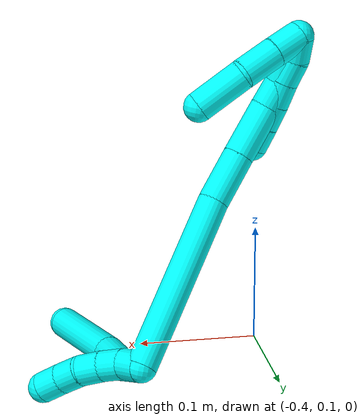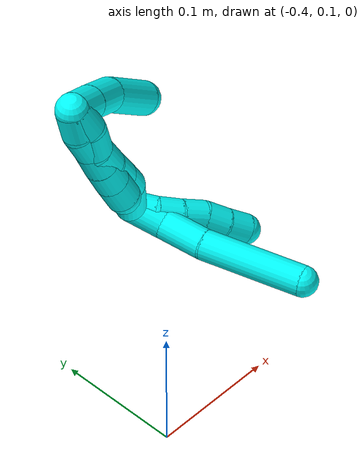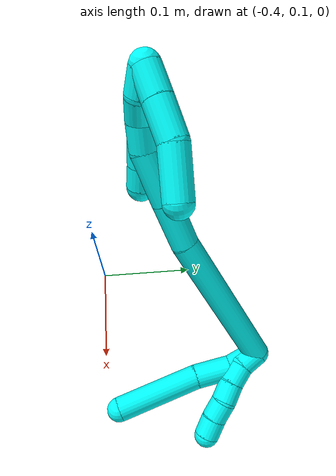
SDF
<sdf version="1.7">
 <world name="default">
  <model name="3">
   <static>0</static>
   <link name="3">
    <collision name="collision-cylinder-e_1_2_8">
     <pose>-0.011897 -0.007867 0.004262 1.07434 -0.925968 -0.577959</pose>
     <geometry><cylinder><radius>0.0125</radius><length>0.029771</length></cylinder></geometry>
     <surface>
      <friction><ode><mu>1.16</mu><mu2>1.16</mu2><slip1>0</slip1><slip2>0</slip2></ode></friction>
      <contact><ode><kp>1e+06</kp><kd>1</kd><max_vel>0</max_vel><min_depth>0.001</min_depth></ode></contact>
     </surface>
    </collision>
    <visual name="visual-cylinder-e_1_2_8">
     <pose>-0.011897 -0.007867 0.004262 1.07434 -0.925968 -0.577959</pose>
     <geometry><cylinder><radius>0.0125</radius><length>0.029771</length></cylinder></geometry>
     <material><ambient>0.003922 1 0.996078 1</ambient></material>
    </visual>
    <collision name="collision-cylinder-e_2_8_9">
     <pose>-0.037508 -0.028029 0.008988 1.53302 -0.83958 -0.811811</pose>
     <geometry><cylinder><radius>0.0125</radius><length>0.036852</length></cylinder></geometry>
     <surface>
      <friction><ode><mu>1.16</mu><mu2>1.16</mu2><slip1>0</slip1><slip2>0</slip2></ode></friction>
      <contact><ode><kp>1e+06</kp><kd>1</kd><max_vel>0</max_vel><min_depth>0.001</min_depth></ode></contact>
     </surface>
    </collision>
    <visual name="visual-cylinder-e_2_8_9">
     <pose>-0.037508 -0.028029 0.008988 1.53302 -0.83958 -0.811811</pose>
     <geometry><cylinder><radius>0.0125</radius><length>0.036852</length></cylinder></geometry>
     <material><ambient>0.003922 1 0.996078 1</ambient></material>
    </visual>
    <collision name="collision-cylinder-e_3_9_6">
     <pose>-0.085949 -0.063348 0.01087 1.50931 -0.984456 -0.934092</pose>
     <geometry><cylinder><radius>0.0125</radius><length>0.083377</length></cylinder></geometry>
     <surface>
      <friction><ode><mu>1.16</mu><mu2>1.16</mu2><slip1>0</slip1><slip2>0</slip2></ode></friction>
      <contact><ode><kp>1e+06</kp><kd>1</kd><max_vel>0</max_vel><min_depth>0.001</min_depth></ode></contact>
     </surface>
    </collision>
    <visual name="visual-cylinder-e_3_9_6">
     <pose>-0.085949 -0.063348 0.01087 1.50931 -0.984456 -0.934092</pose>
     <geometry><cylinder><radius>0.0125</radius><length>0.083377</length></cylinder></geometry>
     <material><ambient>0.003922 1 0.996078 1</ambient></material>
    </visual>
    <collision name="collision-cylinder-e_1_2_10">
     <pose>-0.00926 -0.003196 0.00201 1.0095 -1.18363 -0.711175</pose>
     <geometry><cylinder><radius>0.0125</radius><length>0.02</length></cylinder></geometry>
     <surface>
      <friction><ode><mu>1.16</mu><mu2>1.16</mu2><slip1>0</slip1><slip2>0</slip2></ode></friction>
      <contact><ode><kp>1e+06</kp><kd>1</kd><max_vel>0</max_vel><min_depth>0.001</min_depth></ode></contact>
     </surface>
    </collision>
    <visual name="visual-cylinder-e_1_2_10">
     <pose>-0.00926 -0.003196 0.00201 1.0095 -1.18363 -0.711175</pose>
     <geometry><cylinder><radius>0.0125</radius><length>0.02</length></cylinder></geometry>
     <material><ambient>0.003922 1 0.996078 1</ambient></material>
    </visual>
    <collision name="collision-cylinder-e_2_10_11">
     <pose>-0.027748 -0.006741 0.007857 0.090599 -1.17527 -0.060374</pose>
     <geometry><cylinder><radius>0.0125</radius><length>0.02</length></cylinder></geometry>
     <surface>
      <friction><ode><mu>1.16</mu><mu2>1.16</mu2><slip1>0</slip1><slip2>0</slip2></ode></friction>
      <contact><ode><kp>1e+06</kp><kd>1</kd><max_vel>0</max_vel><min_depth>0.001</min_depth></ode></contact>
     </surface>
    </collision>
    <visual name="visual-cylinder-e_2_10_11">
     <pose>-0.027748 -0.006741 0.007857 0.090599 -1.17527 -0.060374</pose>
     <geometry><cylinder><radius>0.0125</radius><length>0.02</length></cylinder></geometry>
     <material><ambient>0.003922 1 0.996078 1</ambient></material>
    </visual>
    <collision name="collision-cylinder-e_3_11_12">
     <pose>-0.045869 -0.006212 0.016181 -0.193182 -1.09588 0.118124</pose>
     <geometry><cylinder><radius>0.0125</radius><length>0.02</length></cylinder></geometry>
     <surface>
      <friction><ode><mu>1.16</mu><mu2>1.16</mu2><slip1>0</slip1><slip2>0</slip2></ode></friction>
      <contact><ode><kp>1e+06</kp><kd>1</kd><max_vel>0</max_vel><min_depth>0.001</min_depth></ode></contact>
     </surface>
    </collision>
    <visual name="visual-cylinder-e_3_11_12">
     <pose>-0.045869 -0.006212 0.016181 -0.193182 -1.09588 0.118124</pose>
     <geometry><cylinder><radius>0.0125</radius><length>0.02</length></cylinder></geometry>
     <material><ambient>0.003922 1 0.996078 1</ambient></material>
    </visual>
    <collision name="collision-cylinder-e_4_12_13">
     <pose>-0.06278 -0.006283 0.026569 0.159512 -0.930322 -0.080185</pose>
     <geometry><cylinder><radius>0.0125</radius><length>0.02</length></cylinder></geometry>
     <surface>
      <friction><ode><mu>1.16</mu><mu2>1.16</mu2><slip1>0</slip1><slip2>0</slip2></ode></friction>
      <contact><ode><kp>1e+06</kp><kd>1</kd><max_vel>0</max_vel><min_depth>0.001</min_depth></ode></contact>
     </surface>
    </collision>
    <visual name="visual-cylinder-e_4_12_13">
     <pose>-0.06278 -0.006283 0.026569 0.159512 -0.930322 -0.080185</pose>
     <geometry><cylinder><radius>0.0125</radius><length>0.02</length></cylinder></geometry>
     <material><ambient>0.003922 1 0.996078 1</ambient></material>
    </visual>
    <collision name="collision-cylinder-e_5_13_5">
     <pose>-0.078629 -0.007165 0.038687 -0.01078 -0.899636 0.005205</pose>
     <geometry><cylinder><radius>0.0125</radius><length>0.02</length></cylinder></geometry>
     <surface>
      <friction><ode><mu>1.16</mu><mu2>1.16</mu2><slip1>0</slip1><slip2>0</slip2></ode></friction>
      <contact><ode><kp>1e+06</kp><kd>1</kd><max_vel>0</max_vel><min_depth>0.001</min_depth></ode></contact>
     </surface>
    </collision>
    <visual name="visual-cylinder-e_5_13_5">
     <pose>-0.078629 -0.007165 0.038687 -0.01078 -0.899636 0.005205</pose>
     <geometry><cylinder><radius>0.0125</radius><length>0.02</length></cylinder></geometry>
     <material><ambient>0.003922 1 0.996078 1</ambient></material>
    </visual>
    <collision name="collision-cylinder-e_1_2_14">
     <pose>-0.000292 -0.036433 -0.063473 2.62051 -0.003983 -0.01494</pose>
     <geometry><cylinder><radius>0.0125</radius><length>0.146374</length></cylinder></geometry>
     <surface>
      <friction><ode><mu>1.16</mu><mu2>1.16</mu2><slip1>0</slip1><slip2>0</slip2></ode></friction>
      <contact><ode><kp>1e+06</kp><kd>1</kd><max_vel>0</max_vel><min_depth>0.001</min_depth></ode></contact>
     </surface>
    </collision>
    <visual name="visual-cylinder-e_1_2_14">
     <pose>-0.000292 -0.036433 -0.063473 2.62051 -0.003983 -0.01494</pose>
     <geometry><cylinder><radius>0.0125</radius><length>0.146374</length></cylinder></geometry>
     <material><ambient>0.003922 1 0.996078 1</ambient></material>
    </visual>
    <collision name="collision-cylinder-e_2_14_15">
     <pose>0.00214 -0.082091 -0.145881 2.68828 0.128561 0.544379</pose>
     <geometry><cylinder><radius>0.0125</radius><length>0.042474</length></cylinder></geometry>
     <surface>
      <friction><ode><mu>1.16</mu><mu2>1.16</mu2><slip1>0</slip1><slip2>0</slip2></ode></friction>
      <contact><ode><kp>1e+06</kp><kd>1</kd><max_vel>0</max_vel><min_depth>0.001</min_depth></ode></contact>
     </surface>
    </collision>
    <visual name="visual-cylinder-e_2_14_15">
     <pose>0.00214 -0.082091 -0.145881 2.68828 0.128561 0.544379</pose>
     <geometry><cylinder><radius>0.0125</radius><length>0.042474</length></cylinder></geometry>
     <material><ambient>0.003922 1 0.996078 1</ambient></material>
    </visual>
    <collision name="collision-cylinder-e_3_15_16">
     <pose>0.008109 -0.101092 -0.185123 2.69287 0.143068 0.608507</pose>
     <geometry><cylinder><radius>0.0125</radius><length>0.045543</length></cylinder></geometry>
     <surface>
      <friction><ode><mu>1.16</mu><mu2>1.16</mu2><slip1>0</slip1><slip2>0</slip2></ode></friction>
      <contact><ode><kp>1e+06</kp><kd>1</kd><max_vel>0</max_vel><min_depth>0.001</min_depth></ode></contact>
     </surface>
    </collision>
    <visual name="visual-cylinder-e_3_15_16">
     <pose>0.008109 -0.101092 -0.185123 2.69287 0.143068 0.608507</pose>
     <geometry><cylinder><radius>0.0125</radius><length>0.045543</length></cylinder></geometry>
     <material><ambient>0.003922 1 0.996078 1</ambient></material>
    </visual>
    <collision name="collision-cylinder-e_4_16_17">
     <pose>0.01472 -0.112793 -0.216598 2.97104 0.288593 2.07802</pose>
     <geometry><cylinder><radius>0.0125</radius><length>0.023642</length></cylinder></geometry>
     <surface>
      <friction><ode><mu>1.16</mu><mu2>1.16</mu2><slip1>0</slip1><slip2>0</slip2></ode></friction>
      <contact><ode><kp>1e+06</kp><kd>1</kd><max_vel>0</max_vel><min_depth>0.001</min_depth></ode></contact>
     </surface>
    </collision>
    <visual name="visual-cylinder-e_4_16_17">
     <pose>0.01472 -0.112793 -0.216598 2.97104 0.288593 2.07802</pose>
     <geometry><cylinder><radius>0.0125</radius><length>0.023642</length></cylinder></geometry>
     <material><ambient>0.003922 1 0.996078 1</ambient></material>
    </visual>
    <collision name="collision-cylinder-e_5_17_18">
     <pose>0.019087 -0.113641 -0.23784 -3.03521 0.098586 -1.49466</pose>
     <geometry><cylinder><radius>0.0125</radius><length>0.020363</length></cylinder></geometry>
     <surface>
      <friction><ode><mu>1.16</mu><mu2>1.16</mu2><slip1>0</slip1><slip2>0</slip2></ode></friction>
      <contact><ode><kp>1e+06</kp><kd>1</kd><max_vel>0</max_vel><min_depth>0.001</min_depth></ode></contact>
     </surface>
    </collision>
    <visual name="visual-cylinder-e_5_17_18">
     <pose>0.019087 -0.113641 -0.23784 -3.03521 0.098586 -1.49466</pose>
     <geometry><cylinder><radius>0.0125</radius><length>0.020363</length></cylinder></geometry>
     <material><ambient>0.003922 1 0.996078 1</ambient></material>
    </visual>
    <collision name="collision-cylinder-e_6_18_1">
     <pose>0.024099 -0.111194 -0.257852 -3.00448 0.380302 -2.45628</pose>
     <geometry><cylinder><radius>0.0125</radius><length>0.021605</length></cylinder></geometry>
     <surface>
      <friction><ode><mu>1.16</mu><mu2>1.16</mu2><slip1>0</slip1><slip2>0</slip2></ode></friction>
      <contact><ode><kp>1e+06</kp><kd>1</kd><max_vel>0</max_vel><min_depth>0.001</min_depth></ode></contact>
     </surface>
    </collision>
    <visual name="visual-cylinder-e_6_18_1">
     <pose>0.024099 -0.111194 -0.257852 -3.00448 0.380302 -2.45628</pose>
     <geometry><cylinder><radius>0.0125</radius><length>0.021605</length></cylinder></geometry>
     <material><ambient>0.003922 1 0.996078 1</ambient></material>
    </visual>
    <collision name="collision-cylinder-e_1_1_19">
     <pose>0.022665 -0.10156 -0.26013 -0.823407 -0.450114 0.199271</pose>
     <geometry><cylinder><radius>0.0125</radius><length>0.025024</length></cylinder></geometry>
     <surface>
      <friction><ode><mu>1.16</mu><mu2>1.16</mu2><slip1>0</slip1><slip2>0</slip2></ode></friction>
      <contact><ode><kp>1e+06</kp><kd>1</kd><max_vel>0</max_vel><min_depth>0.001</min_depth></ode></contact>
     </surface>
    </collision>
    <visual name="visual-cylinder-e_1_1_19">
     <pose>0.022665 -0.10156 -0.26013 -0.823407 -0.450114 0.199271</pose>
     <geometry><cylinder><radius>0.0125</radius><length>0.025024</length></cylinder></geometry>
     <material><ambient>0.003922 1 0.996078 1</ambient></material>
    </visual>
    <collision name="collision-cylinder-e_2_19_20">
     <pose>0.010327 -0.082926 -0.242262 -0.793189 -0.442372 0.187786</pose>
     <geometry><cylinder><radius>0.0125</radius><length>0.032207</length></cylinder></geometry>
     <surface>
      <friction><ode><mu>1.16</mu><mu2>1.16</mu2><slip1>0</slip1><slip2>0</slip2></ode></friction>
      <contact><ode><kp>1e+06</kp><kd>1</kd><max_vel>0</max_vel><min_depth>0.001</min_depth></ode></contact>
     </surface>
    </collision>
    <visual name="visual-cylinder-e_2_19_20">
     <pose>0.010327 -0.082926 -0.242262 -0.793189 -0.442372 0.187786</pose>
     <geometry><cylinder><radius>0.0125</radius><length>0.032207</length></cylinder></geometry>
     <material><ambient>0.003922 1 0.996078 1</ambient></material>
    </visual>
    <collision name="collision-cylinder-e_3_20_4">
     <pose>-0.008531 -0.064064 -0.216495 -0.499626 -0.593795 0.155801</pose>
     <geometry><cylinder><radius>0.0125</radius><length>0.042768</length></cylinder></geometry>
     <surface>
      <friction><ode><mu>1.16</mu><mu2>1.16</mu2><slip1>0</slip1><slip2>0</slip2></ode></friction>
      <contact><ode><kp>1e+06</kp><kd>1</kd><max_vel>0</max_vel><min_depth>0.001</min_depth></ode></contact>
     </surface>
    </collision>
    <visual name="visual-cylinder-e_3_20_4">
     <pose>-0.008531 -0.064064 -0.216495 -0.499626 -0.593795 0.155801</pose>
     <geometry><cylinder><radius>0.0125</radius><length>0.042768</length></cylinder></geometry>
     <material><ambient>0.003922 1 0.996078 1</ambient></material>
    </visual>
    <collision name="collision-cylinder-e_1_1_21">
     <pose>0.027207 -0.11198 -0.258065 0.218291 -0.090288 -0.009901</pose>
     <geometry><cylinder><radius>0.0125</radius><length>0.02</length></cylinder></geometry>
     <surface>
      <friction><ode><mu>1.16</mu><mu2>1.16</mu2><slip1>0</slip1><slip2>0</slip2></ode></friction>
      <contact><ode><kp>1e+06</kp><kd>1</kd><max_vel>0</max_vel><min_depth>0.001</min_depth></ode></contact>
     </surface>
    </collision>
    <visual name="visual-cylinder-e_1_1_21">
     <pose>0.027207 -0.11198 -0.258065 0.218291 -0.090288 -0.009901</pose>
     <geometry><cylinder><radius>0.0125</radius><length>0.02</length></cylinder></geometry>
     <material><ambient>0.003922 1 0.996078 1</ambient></material>
    </visual>
    <collision name="collision-cylinder-e_2_21_22">
     <pose>0.02335 -0.114262 -0.23879 0.013135 -0.29995 -0.001985</pose>
     <geometry><cylinder><radius>0.0125</radius><length>0.02</length></cylinder></geometry>
     <surface>
      <friction><ode><mu>1.16</mu><mu2>1.16</mu2><slip1>0</slip1><slip2>0</slip2></ode></friction>
      <contact><ode><kp>1e+06</kp><kd>1</kd><max_vel>0</max_vel><min_depth>0.001</min_depth></ode></contact>
     </surface>
    </collision>
    <visual name="visual-cylinder-e_2_21_22">
     <pose>0.02335 -0.114262 -0.23879 0.013135 -0.29995 -0.001985</pose>
     <geometry><cylinder><radius>0.0125</radius><length>0.02</length></cylinder></geometry>
     <material><ambient>0.003922 1 0.996078 1</ambient></material>
    </visual>
    <collision name="collision-cylinder-e_3_22_23">
     <pose>0.018031 -0.114778 -0.219528 0.040187 -0.238736 -0.004821</pose>
     <geometry><cylinder><radius>0.0125</radius><length>0.02</length></cylinder></geometry>
     <surface>
      <friction><ode><mu>1.16</mu><mu2>1.16</mu2><slip1>0</slip1><slip2>0</slip2></ode></friction>
      <contact><ode><kp>1e+06</kp><kd>1</kd><max_vel>0</max_vel><min_depth>0.001</min_depth></ode></contact>
     </surface>
    </collision>
    <visual name="visual-cylinder-e_3_22_23">
     <pose>0.018031 -0.114778 -0.219528 0.040187 -0.238736 -0.004821</pose>
     <geometry><cylinder><radius>0.0125</radius><length>0.02</length></cylinder></geometry>
     <material><ambient>0.003922 1 0.996078 1</ambient></material>
    </visual>
    <collision name="collision-cylinder-e_4_23_24">
     <pose>0.012963 -0.1152 -0.200192 0.003323 -0.273728 -0.000458</pose>
     <geometry><cylinder><radius>0.0125</radius><length>0.02</length></cylinder></geometry>
     <surface>
      <friction><ode><mu>1.16</mu><mu2>1.16</mu2><slip1>0</slip1><slip2>0</slip2></ode></friction>
      <contact><ode><kp>1e+06</kp><kd>1</kd><max_vel>0</max_vel><min_depth>0.001</min_depth></ode></contact>
     </surface>
    </collision>
    <visual name="visual-cylinder-e_4_23_24">
     <pose>0.012963 -0.1152 -0.200192 0.003323 -0.273728 -0.000458</pose>
     <geometry><cylinder><radius>0.0125</radius><length>0.02</length></cylinder></geometry>
     <material><ambient>0.003922 1 0.996078 1</ambient></material>
    </visual>
    <collision name="collision-cylinder-e_5_24_3">
     <pose>0.007159 -0.115473 -0.181061 0.025374 -0.315309 -0.004034</pose>
     <geometry><cylinder><radius>0.0125</radius><length>0.02</length></cylinder></geometry>
     <surface>
      <friction><ode><mu>1.16</mu><mu2>1.16</mu2><slip1>0</slip1><slip2>0</slip2></ode></friction>
      <contact><ode><kp>1e+06</kp><kd>1</kd><max_vel>0</max_vel><min_depth>0.001</min_depth></ode></contact>
     </surface>
    </collision>
    <visual name="visual-cylinder-e_5_24_3">
     <pose>0.007159 -0.115473 -0.181061 0.025374 -0.315309 -0.004034</pose>
     <geometry><cylinder><radius>0.0125</radius><length>0.02</length></cylinder></geometry>
     <material><ambient>0.003922 1 0.996078 1</ambient></material>
    </visual>
    <collision name="collision-sphere-3">
     <pose>0.004058 -0.115715 -0.171557 0 -0 0</pose>
     <geometry><sphere><radius>0.0125</radius></sphere></geometry>
     <surface>
      <friction><ode><mu>1.16</mu><mu2>1.16</mu2><slip1>0</slip1><slip2>0</slip2></ode></friction>
      <contact><ode><kp>1e+06</kp><kd>1</kd><max_vel>0</max_vel><min_depth>0.001</min_depth></ode></contact>
     </surface>
    </collision>
    <visual name="visual-sphere-3">
     <pose>0.004058 -0.115715 -0.171557 0 -0 0</pose>
     <geometry><sphere><radius>0.0125</radius></sphere></geometry>
     <material><ambient>0.003922 1 0.996078 1</ambient></material>
    </visual>
    <collision name="collision-sphere-24">
     <pose>0.01026 -0.115232 -0.190564 0 -0 0</pose>
     <geometry><sphere><radius>0.0125</radius></sphere></geometry>
     <surface>
      <friction><ode><mu>1.16</mu><mu2>1.16</mu2><slip1>0</slip1><slip2>0</slip2></ode></friction>
      <contact><ode><kp>1e+06</kp><kd>1</kd><max_vel>0</max_vel><min_depth>0.001</min_depth></ode></contact>
     </surface>
    </collision>
    <visual name="visual-sphere-24">
     <pose>0.01026 -0.115232 -0.190564 0 -0 0</pose>
     <geometry><sphere><radius>0.0125</radius></sphere></geometry>
     <material><ambient>0.003922 1 0.996078 1</ambient></material>
    </visual>
    <collision name="collision-sphere-23">
     <pose>0.015666 -0.115168 -0.20982 0 -0 0</pose>
     <geometry><sphere><radius>0.0125</radius></sphere></geometry>
     <surface>
      <friction><ode><mu>1.16</mu><mu2>1.16</mu2><slip1>0</slip1><slip2>0</slip2></ode></friction>
      <contact><ode><kp>1e+06</kp><kd>1</kd><max_vel>0</max_vel><min_depth>0.001</min_depth></ode></contact>
     </surface>
    </collision>
    <visual name="visual-sphere-23">
     <pose>0.015666 -0.115168 -0.20982 0 -0 0</pose>
     <geometry><sphere><radius>0.0125</radius></sphere></geometry>
     <material><ambient>0.003922 1 0.996078 1</ambient></material>
    </visual>
    <collision name="collision-sphere-22">
     <pose>0.020396 -0.114387 -0.229237 0 -0 0</pose>
     <geometry><sphere><radius>0.0125</radius></sphere></geometry>
     <surface>
      <friction><ode><mu>1.16</mu><mu2>1.16</mu2><slip1>0</slip1><slip2>0</slip2></ode></friction>
      <contact><ode><kp>1e+06</kp><kd>1</kd><max_vel>0</max_vel><min_depth>0.001</min_depth></ode></contact>
     </surface>
    </collision>
    <visual name="visual-sphere-22">
     <pose>0.020396 -0.114387 -0.229237 0 -0 0</pose>
     <geometry><sphere><radius>0.0125</radius></sphere></geometry>
     <material><ambient>0.003922 1 0.996078 1</ambient></material>
    </visual>
    <collision name="collision-sphere-21">
     <pose>0.026305 -0.114136 -0.248342 0 -0 0</pose>
     <geometry><sphere><radius>0.0125</radius></sphere></geometry>
     <surface>
      <friction><ode><mu>1.16</mu><mu2>1.16</mu2><slip1>0</slip1><slip2>0</slip2></ode></friction>
      <contact><ode><kp>1e+06</kp><kd>1</kd><max_vel>0</max_vel><min_depth>0.001</min_depth></ode></contact>
     </surface>
    </collision>
    <visual name="visual-sphere-21">
     <pose>0.026305 -0.114136 -0.248342 0 -0 0</pose>
     <geometry><sphere><radius>0.0125</radius></sphere></geometry>
     <material><ambient>0.003922 1 0.996078 1</ambient></material>
    </visual>
    <collision name="collision-sphere-4">
     <pose>-0.020496 -0.055572 -0.200937 0 -0 0</pose>
     <geometry><sphere><radius>0.0125</radius></sphere></geometry>
     <surface>
      <friction><ode><mu>1.16</mu><mu2>1.16</mu2><slip1>0</slip1><slip2>0</slip2></ode></friction>
      <contact><ode><kp>1e+06</kp><kd>1</kd><max_vel>0</max_vel><min_depth>0.001</min_depth></ode></contact>
     </surface>
    </collision>
    <visual name="visual-sphere-4">
     <pose>-0.020496 -0.055572 -0.200937 0 -0 0</pose>
     <geometry><sphere><radius>0.0125</radius></sphere></geometry>
     <material><ambient>0.003922 1 0.996078 1</ambient></material>
    </visual>
    <collision name="collision-sphere-20">
     <pose>0.003434 -0.072555 -0.232052 0 -0 0</pose>
     <geometry><sphere><radius>0.0125</radius></sphere></geometry>
     <surface>
      <friction><ode><mu>1.16</mu><mu2>1.16</mu2><slip1>0</slip1><slip2>0</slip2></ode></friction>
      <contact><ode><kp>1e+06</kp><kd>1</kd><max_vel>0</max_vel><min_depth>0.001</min_depth></ode></contact>
     </surface>
    </collision>
    <visual name="visual-sphere-20">
     <pose>0.003434 -0.072555 -0.232052 0 -0 0</pose>
     <geometry><sphere><radius>0.0125</radius></sphere></geometry>
     <material><ambient>0.003922 1 0.996078 1</ambient></material>
    </visual>
    <collision name="collision-sphere-11">
     <pose>-0.036976 -0.00709 0.011694 0 -0 0</pose>
     <geometry><sphere><radius>0.0125</radius></sphere></geometry>
     <surface>
      <friction><ode><mu>1.16</mu><mu2>1.16</mu2><slip1>0</slip1><slip2>0</slip2></ode></friction>
      <contact><ode><kp>1e+06</kp><kd>1</kd><max_vel>0</max_vel><min_depth>0.001</min_depth></ode></contact>
     </surface>
    </collision>
    <visual name="visual-sphere-11">
     <pose>-0.036976 -0.00709 0.011694 0 -0 0</pose>
     <geometry><sphere><radius>0.0125</radius></sphere></geometry>
     <material><ambient>0.003922 1 0.996078 1</ambient></material>
    </visual>
    <collision name="collision-sphere-10">
     <pose>-0.01852 -0.006393 0.004019 0 -0 0</pose>
     <geometry><sphere><radius>0.0125</radius></sphere></geometry>
     <surface>
      <friction><ode><mu>1.16</mu><mu2>1.16</mu2><slip1>0</slip1><slip2>0</slip2></ode></friction>
      <contact><ode><kp>1e+06</kp><kd>1</kd><max_vel>0</max_vel><min_depth>0.001</min_depth></ode></contact>
     </surface>
    </collision>
    <visual name="visual-sphere-10">
     <pose>-0.01852 -0.006393 0.004019 0 -0 0</pose>
     <geometry><sphere><radius>0.0125</radius></sphere></geometry>
     <material><ambient>0.003922 1 0.996078 1</ambient></material>
    </visual>
    <collision name="collision-sphere-6">
     <pose>-0.120675 -0.086372 0.012287 0 -0 0</pose>
     <geometry><sphere><radius>0.0125</radius></sphere></geometry>
     <surface>
      <friction><ode><mu>1.16</mu><mu2>1.16</mu2><slip1>0</slip1><slip2>0</slip2></ode></friction>
      <contact><ode><kp>1e+06</kp><kd>1</kd><max_vel>0</max_vel><min_depth>0.001</min_depth></ode></contact>
     </surface>
    </collision>
    <visual name="visual-sphere-6">
     <pose>-0.120675 -0.086372 0.012287 0 -0 0</pose>
     <geometry><sphere><radius>0.0125</radius></sphere></geometry>
     <material><ambient>0.003922 1 0.996078 1</ambient></material>
    </visual>
    <collision name="collision-sphere-9">
     <pose>-0.051224 -0.040325 0.009452 0 -0 0</pose>
     <geometry><sphere><radius>0.0125</radius></sphere></geometry>
     <surface>
      <friction><ode><mu>1.16</mu><mu2>1.16</mu2><slip1>0</slip1><slip2>0</slip2></ode></friction>
      <contact><ode><kp>1e+06</kp><kd>1</kd><max_vel>0</max_vel><min_depth>0.001</min_depth></ode></contact>
     </surface>
    </collision>
    <visual name="visual-sphere-9">
     <pose>-0.051224 -0.040325 0.009452 0 -0 0</pose>
     <geometry><sphere><radius>0.0125</radius></sphere></geometry>
     <material><ambient>0.003922 1 0.996078 1</ambient></material>
    </visual>
    <collision name="collision-sphere-2">
     <geometry><sphere><radius>0.0125</radius></sphere></geometry>
     <surface>
      <friction><ode><mu>1.16</mu><mu2>1.16</mu2><slip1>0</slip1><slip2>0</slip2></ode></friction>
      <contact><ode><kp>1e+06</kp><kd>1</kd><max_vel>0</max_vel><min_depth>0.001</min_depth></ode></contact>
     </surface>
    </collision>
    <visual name="visual-sphere-2">
     <geometry><sphere><radius>0.0125</radius></sphere></geometry>
     <material><ambient>0.003922 1 0.996078 1</ambient></material>
    </visual>
    <collision name="collision-sphere-19">
     <pose>0.017221 -0.093296 -0.252473 0 -0 0</pose>
     <geometry><sphere><radius>0.0125</radius></sphere></geometry>
     <surface>
      <friction><ode><mu>1.16</mu><mu2>1.16</mu2><slip1>0</slip1><slip2>0</slip2></ode></friction>
      <contact><ode><kp>1e+06</kp><kd>1</kd><max_vel>0</max_vel><min_depth>0.001</min_depth></ode></contact>
     </surface>
    </collision>
    <visual name="visual-sphere-19">
     <pose>0.017221 -0.093296 -0.252473 0 -0 0</pose>
     <geometry><sphere><radius>0.0125</radius></sphere></geometry>
     <material><ambient>0.003922 1 0.996078 1</ambient></material>
    </visual>
    <collision name="collision-sphere-8">
     <pose>-0.023793 -0.015734 0.008523 0 -0 0</pose>
     <geometry><sphere><radius>0.0125</radius></sphere></geometry>
     <surface>
      <friction><ode><mu>1.16</mu><mu2>1.16</mu2><slip1>0</slip1><slip2>0</slip2></ode></friction>
      <contact><ode><kp>1e+06</kp><kd>1</kd><max_vel>0</max_vel><min_depth>0.001</min_depth></ode></contact>
     </surface>
    </collision>
    <visual name="visual-sphere-8">
     <pose>-0.023793 -0.015734 0.008523 0 -0 0</pose>
     <geometry><sphere><radius>0.0125</radius></sphere></geometry>
     <material><ambient>0.003922 1 0.996078 1</ambient></material>
    </visual>
    <collision name="collision-sphere-12">
     <pose>-0.054762 -0.005334 0.020669 0 -0 0</pose>
     <geometry><sphere><radius>0.0125</radius></sphere></geometry>
     <surface>
      <friction><ode><mu>1.16</mu><mu2>1.16</mu2><slip1>0</slip1><slip2>0</slip2></ode></friction>
      <contact><ode><kp>1e+06</kp><kd>1</kd><max_vel>0</max_vel><min_depth>0.001</min_depth></ode></contact>
     </surface>
    </collision>
    <visual name="visual-sphere-12">
     <pose>-0.054762 -0.005334 0.020669 0 -0 0</pose>
     <geometry><sphere><radius>0.0125</radius></sphere></geometry>
     <material><ambient>0.003922 1 0.996078 1</ambient></material>
    </visual>
    <collision name="collision-sphere-13">
     <pose>-0.070798 -0.007232 0.032469 0 -0 0</pose>
     <geometry><sphere><radius>0.0125</radius></sphere></geometry>
     <surface>
      <friction><ode><mu>1.16</mu><mu2>1.16</mu2><slip1>0</slip1><slip2>0</slip2></ode></friction>
      <contact><ode><kp>1e+06</kp><kd>1</kd><max_vel>0</max_vel><min_depth>0.001</min_depth></ode></contact>
     </surface>
    </collision>
    <visual name="visual-sphere-13">
     <pose>-0.070798 -0.007232 0.032469 0 -0 0</pose>
     <geometry><sphere><radius>0.0125</radius></sphere></geometry>
     <material><ambient>0.003922 1 0.996078 1</ambient></material>
    </visual>
    <collision name="collision-sphere-5">
     <pose>-0.08646 -0.007098 0.044906 0 -0 0</pose>
     <geometry><sphere><radius>0.0125</radius></sphere></geometry>
     <surface>
      <friction><ode><mu>1.16</mu><mu2>1.16</mu2><slip1>0</slip1><slip2>0</slip2></ode></friction>
      <contact><ode><kp>1e+06</kp><kd>1</kd><max_vel>0</max_vel><min_depth>0.001</min_depth></ode></contact>
     </surface>
    </collision>
    <visual name="visual-sphere-5">
     <pose>-0.08646 -0.007098 0.044906 0 -0 0</pose>
     <geometry><sphere><radius>0.0125</radius></sphere></geometry>
     <material><ambient>0.003922 1 0.996078 1</ambient></material>
    </visual>
    <collision name="collision-sphere-14">
     <pose>-0.000583 -0.072867 -0.126946 0 -0 0</pose>
     <geometry><sphere><radius>0.0125</radius></sphere></geometry>
     <surface>
      <friction><ode><mu>1.16</mu><mu2>1.16</mu2><slip1>0</slip1><slip2>0</slip2></ode></friction>
      <contact><ode><kp>1e+06</kp><kd>1</kd><max_vel>0</max_vel><min_depth>0.001</min_depth></ode></contact>
     </surface>
    </collision>
    <visual name="visual-sphere-14">
     <pose>-0.000583 -0.072867 -0.126946 0 -0 0</pose>
     <geometry><sphere><radius>0.0125</radius></sphere></geometry>
     <material><ambient>0.003922 1 0.996078 1</ambient></material>
    </visual>
    <collision name="collision-sphere-15">
     <pose>0.004863 -0.091314 -0.164816 0 -0 0</pose>
     <geometry><sphere><radius>0.0125</radius></sphere></geometry>
     <surface>
      <friction><ode><mu>1.16</mu><mu2>1.16</mu2><slip1>0</slip1><slip2>0</slip2></ode></friction>
      <contact><ode><kp>1e+06</kp><kd>1</kd><max_vel>0</max_vel><min_depth>0.001</min_depth></ode></contact>
     </surface>
    </collision>
    <visual name="visual-sphere-15">
     <pose>0.004863 -0.091314 -0.164816 0 -0 0</pose>
     <geometry><sphere><radius>0.0125</radius></sphere></geometry>
     <material><ambient>0.003922 1 0.996078 1</ambient></material>
    </visual>
    <collision name="collision-sphere-16">
     <pose>0.011356 -0.11087 -0.20543 0 -0 0</pose>
     <geometry><sphere><radius>0.0125</radius></sphere></geometry>
     <surface>
      <friction><ode><mu>1.16</mu><mu2>1.16</mu2><slip1>0</slip1><slip2>0</slip2></ode></friction>
      <contact><ode><kp>1e+06</kp><kd>1</kd><max_vel>0</max_vel><min_depth>0.001</min_depth></ode></contact>
     </surface>
    </collision>
    <visual name="visual-sphere-16">
     <pose>0.011356 -0.11087 -0.20543 0 -0 0</pose>
     <geometry><sphere><radius>0.0125</radius></sphere></geometry>
     <material><ambient>0.003922 1 0.996078 1</ambient></material>
    </visual>
    <collision name="collision-sphere-17">
     <pose>0.018085 -0.114716 -0.227766 0 -0 0</pose>
     <geometry><sphere><radius>0.0125</radius></sphere></geometry>
     <surface>
      <friction><ode><mu>1.16</mu><mu2>1.16</mu2><slip1>0</slip1><slip2>0</slip2></ode></friction>
      <contact><ode><kp>1e+06</kp><kd>1</kd><max_vel>0</max_vel><min_depth>0.001</min_depth></ode></contact>
     </surface>
    </collision>
    <visual name="visual-sphere-17">
     <pose>0.018085 -0.114716 -0.227766 0 -0 0</pose>
     <geometry><sphere><radius>0.0125</radius></sphere></geometry>
     <material><ambient>0.003922 1 0.996078 1</ambient></material>
    </visual>
    <collision name="collision-sphere-18">
     <pose>0.020089 -0.112565 -0.247915 0 -0 0</pose>
     <geometry><sphere><radius>0.0125</radius></sphere></geometry>
     <surface>
      <friction><ode><mu>1.16</mu><mu2>1.16</mu2><slip1>0</slip1><slip2>0</slip2></ode></friction>
      <contact><ode><kp>1e+06</kp><kd>1</kd><max_vel>0</max_vel><min_depth>0.001</min_depth></ode></contact>
     </surface>
    </collision>
    <visual name="visual-sphere-18">
     <pose>0.020089 -0.112565 -0.247915 0 -0 0</pose>
     <geometry><sphere><radius>0.0125</radius></sphere></geometry>
     <material><ambient>0.003922 1 0.996078 1</ambient></material>
    </visual>
    <collision name="collision-sphere-1">
     <pose>0.028109 -0.109823 -0.267788 0 -0 0</pose>
     <geometry><sphere><radius>0.0125</radius></sphere></geometry>
     <surface>
      <friction><ode><mu>1.16</mu><mu2>1.16</mu2><slip1>0</slip1><slip2>0</slip2></ode></friction>
      <contact><ode><kp>1e+06</kp><kd>1</kd><max_vel>0</max_vel><min_depth>0.001</min_depth></ode></contact>
     </surface>
    </collision>
    <visual name="visual-sphere-1">
     <pose>0.028109 -0.109823 -0.267788 0 -0 0</pose>
     <geometry><sphere><radius>0.0125</radius></sphere></geometry>
     <material><ambient>0.003922 1 0.996078 1</ambient></material>
    </visual>
    <inertial>
     <pose>-0.012539 -0.063111 -0.109048 0 -0 0</pose>
     <mass>0.75</mass>
     <inertia>
      <ixx>0.000284</ixx>
      <ixy>0</ixy>
      <ixz>0</ixz>
      <iyy>-0.000206</iyy>
      <iyz>0</iyz>
      <izz>0.000227</izz>
     </inertia>
    </inertial>
   </link>
   <pose>-0.275555 0.258056 0.048033 2.94231 0.100197 2.45125</pose>
  </model>
 </world>
</sdf>
